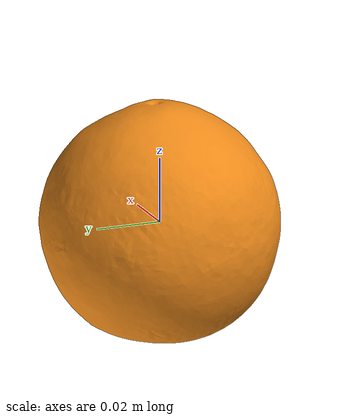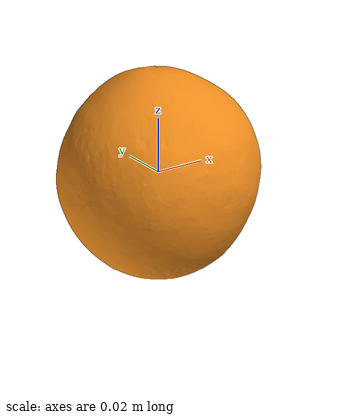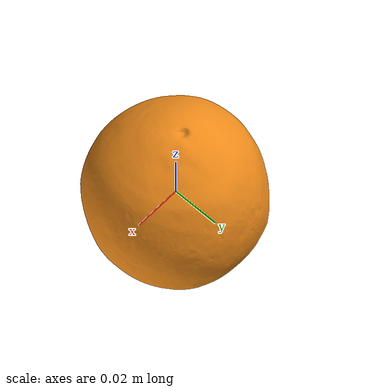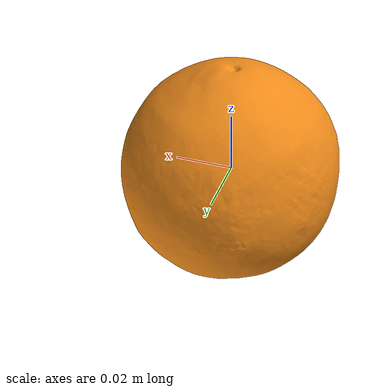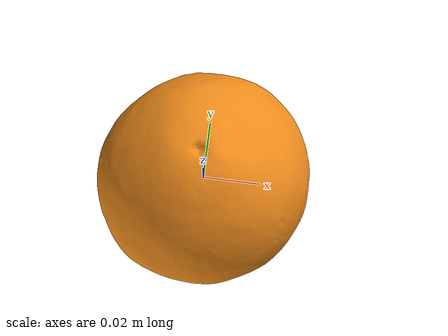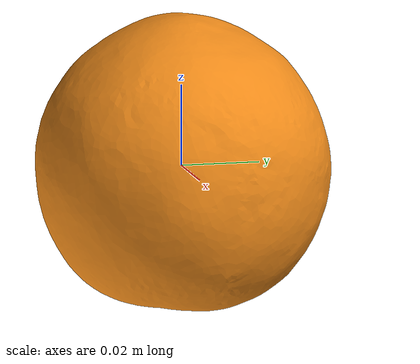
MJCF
<mujoco model="orange">
  <compiler angle="radian" />

  <asset>
    <mesh name="orange_visual_mesh" file="orange/textured.obj" />
    <mesh name="orange_collision_mesh_0" file="orange/textured_coacd_0.stl" />
    <mesh name="orange_collision_mesh_1" file="orange/textured_coacd_1.stl" />
    <mesh name="orange_collision_mesh_2" file="orange/textured_coacd_2.stl" />
    <texture name="orange_texture" type="2d" file="orange/texture_map.png" />
    <material name="orange_material" texture="orange_texture" />
  </asset>

  <worldbody>
    <body name="orange" pos="0 0 0" euler="0 0 0">
      <freejoint name="orange_joint" />
      <geom name="orange_visual_geom" type="mesh" mesh="orange_visual_mesh" material="orange_material" pos="-0.0 0.0 -0.0" euler="0 0 0" contype="0" conaffinity="0" group="0" />
      <geom name="orange_collision_geom_0" type="mesh" mesh="orange_collision_mesh_0" pos="-0.0 0.0 -0.0" euler="0 0 0" contype="1" conaffinity="1" group="3" />
      <geom name="orange_collision_geom_1" type="mesh" mesh="orange_collision_mesh_1" pos="-0.0 0.0 -0.0" euler="0 0 0" contype="1" conaffinity="1" group="3" />
      <geom name="orange_collision_geom_2" type="mesh" mesh="orange_collision_mesh_2" pos="-0.0 0.0 -0.0" euler="0 0 0" contype="1" conaffinity="1" group="3" />
      <inertial pos="0 0 0" euler="0 0 0" mass="0.047" diaginertia="0.001 0.001 0.001" />
    </body>
  </worldbody>
</mujoco>
